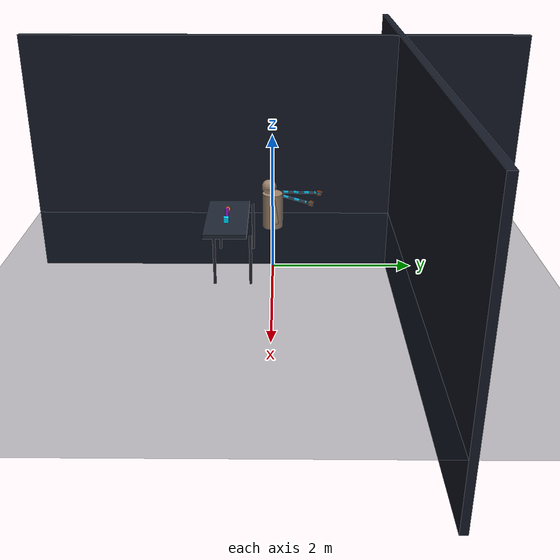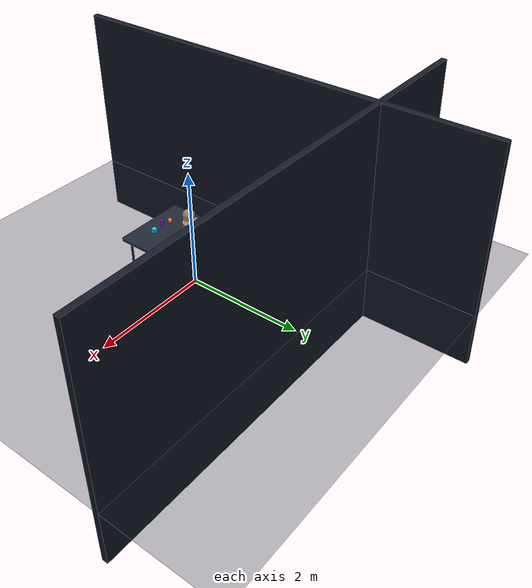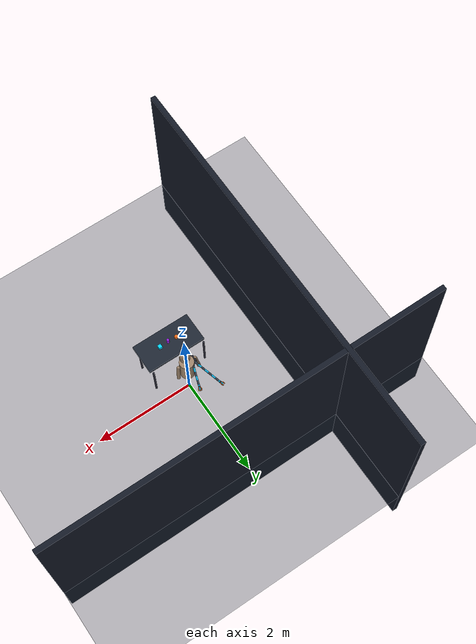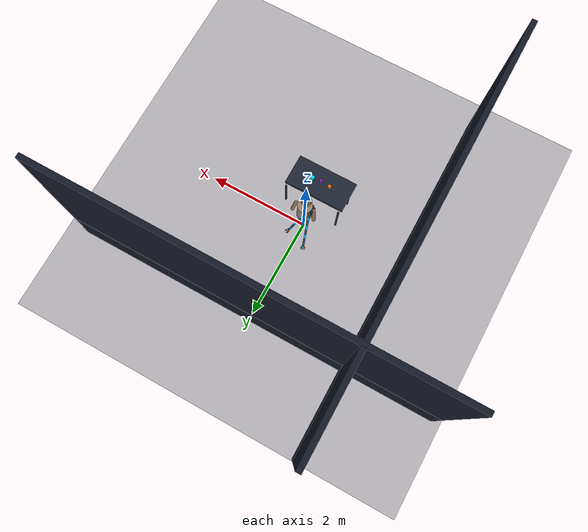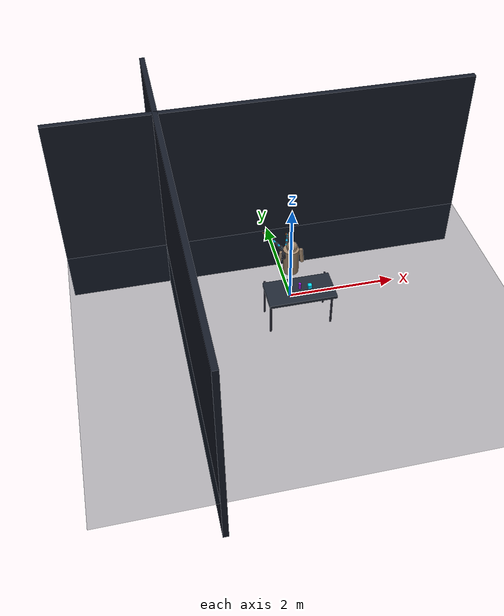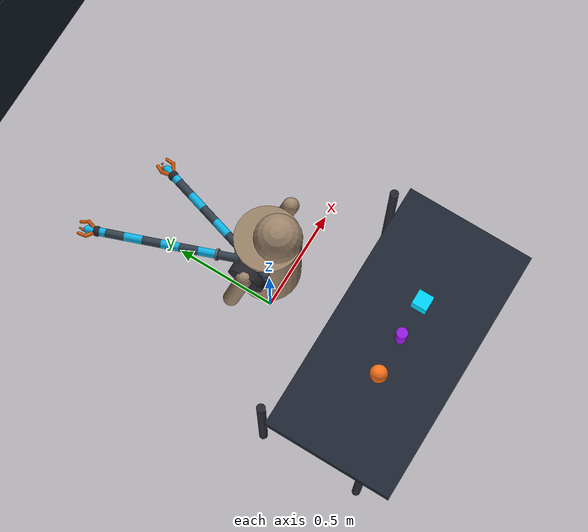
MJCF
<mujoco model="srl_iron_spider">
  <compiler angle="radian" meshdir="../meshes/" autolimits="true"/>

  <option integrator="RK4" timestep="0.002" gravity="0 0 -9.81" impratio="10">
    <flag energy="enable" contact="enable"/>
  </option>

  <default>
    <joint armature="0.01" damping="0.1" limited="true"/>
    <geom contype="1" conaffinity="1" condim="3" density="1000" solref="0.02 1" solimp="0.9 0.95 0.001"/>
    <position kp="100" kv="10" ctrlrange="-3.14 3.14" forcerange="-50 50"/>

    <!-- Redesigned Arm Materials -->
    <default class="odd_segment">
      <geom type="capsule" size="0.018 0.04" rgba="0.2 0.25 0.3 1" contype="2" conaffinity="1"/>
    </default>
    <default class="even_segment">
      <geom type="capsule" size="0.018 0.04" rgba="0.05 0.7 0.9 0.9" contype="2" conaffinity="1"/>
    </default>
    <default class="claw">
      <geom type="capsule" size="0.008 0.02" rgba="0.9 0.4 0.1 1"/>
    </default>
    <!-- Human skin tone/style -->
    <default class="human">
      <geom contype="0" conaffinity="0" rgba="0.62 0.52 0.42 1"/>
    </default>
  </default>

  <asset>
    <texture type="skybox" builtin="gradient" rgb1="0.3 0.5 0.7" rgb2="0 0 0" width="512" height="512"/>
    <texture name="grid" type="2d" builtin="checker" rgb1=".1 .2 .3" rgb2=".2 .3 .4" width="300" height="300" mark="edge" markrgb=".2 .3 .4"/>
    <material name="grid" texture="grid" texrepeat="1 1" texuniform="true" reflectance=".2"/>
  </asset>

  <worldbody>
    <!-- LIGHTING — cinematic multi-light setup -->
    <!-- Key light — front top, warm -->
    <light name="key_light" pos="1 -2 3"
           dir="-0.3 0.5 -0.8"
           diffuse="0.6 0.65 0.7" specular="0.3 0.3 0.4"
           castshadow="false"/>
    <!-- Fill light — left side, cool cyan tint -->
    <light name="fill_light" pos="-2 0 2"
           dir="0.6 0 -0.5"
           diffuse="0.05 0.2 0.35" specular="0.1 0.1 0.2"
           castshadow="false"/>
    <!-- Rim light — back, purple tint -->
    <light name="rim_light" pos="0 2 1.5"
           dir="0 -0.7 -0.4"
           diffuse="0.2 0.05 0.3" specular="0.1 0 0.15"
           castshadow="false"/>
    <!-- Under-glow — from below, very subtle cyan -->
    <light name="under_glow" pos="0 -0.5 0.1"
           dir="0 0.2 0.8"
           diffuse="0.02 0.08 0.12" specular="0 0 0"
           castshadow="false"/>

    <!-- ENVIRONMENT — a proper room not just a ground plane -->
    <!-- Dark floor with grid feel -->
    <geom name="floor" type="plane" size="4 4 0.1"
          rgba="0.05 0.08 0.12 1" condim="3"/>

    <!-- Three walls forming a corner behind the figure -->
    <geom name="wall_back" type="box" size="4 0.05 2"
          pos="0 2.0 1" rgba="0.08 0.1 0.15 1"/>
    <geom name="wall_left" type="box" size="0.05 4 2"
          pos="-2.0 0 1" rgba="0.08 0.1 0.15 1"/>

    <!-- Workbench in front of figure -->
    <geom name="workbench" type="box" size="0.6 0.3 0.03"
          pos="0 -0.65 0.75" rgba="0.12 0.15 0.2 1"/>
    <!-- Workbench legs -->
    <geom name="bench_leg1" type="cylinder" size="0.02 0.37"
          pos="-0.55 -0.8 0.38" rgba="0.15 0.15 0.2 1"/>
    <geom name="bench_leg2" type="cylinder" size="0.02 0.37"
          pos="0.55 -0.8 0.38" rgba="0.15 0.15 0.2 1"/>
    <geom name="bench_leg3" type="cylinder" size="0.02 0.37"
          pos="-0.55 -0.3 0.38" rgba="0.15 0.15 0.2 1"/>
    <geom name="bench_leg4" type="cylinder" size="0.02 0.37"
          pos="0.55 -0.3 0.38" rgba="0.15 0.15 0.2 1"/>

    <!-- INTERACTIVE OBJECTS — things the arms can pick up -->
    <!-- Object A: Cyan glowing cube — primary target -->
    <body name="obj_cube" pos="0.18 -0.65 0.82">
      <freejoint name="cube_joint"/>
      <geom type="box" size="0.035 0.035 0.035"
            rgba="0.0 0.85 1.0 1" mass="0.3"
            solimp="0.9 0.95 0.001" solref="0.02 1"/>
      <site name="cube_site" size="0.005"/>
    </body>

    <!-- Object B: Orange sphere — secondary target -->
    <body name="obj_sphere" pos="-0.18 -0.65 0.82">
      <freejoint name="sphere_joint"/>
      <geom type="sphere" size="0.04"
            rgba="1.0 0.45 0.1 1" mass="0.2"
            solimp="0.9 0.95 0.001" solref="0.02 1"/>
      <site name="sphere_site" size="0.005"/>
    </body>

    <!-- Object C: Purple cylinder — handoff object -->
    <body name="obj_cylinder" pos="0.0 -0.65 0.86">
      <freejoint name="cylinder_joint"/>
      <geom type="cylinder" size="0.025 0.055"
            rgba="0.6 0.1 0.9 1" mass="0.25"
            solimp="0.9 0.95 0.001" solref="0.02 1"/>
      <site name="cylinder_site" size="0.005"/>
    </body>

    <!-- FIXED BASE -->
    <body name="torso_base" pos="0 0 0.9" euler="0 0 0">
      <!-- Human Stand-in -->
      <geom name="human_torso" class="human" type="cylinder" size="0.14 0.25" pos="0 0 0" contype="1" conaffinity="2"/>
      <geom name="human_head" class="human" type="sphere" size="0.1" pos="0 -0.05 0.35" contype="1" conaffinity="2"/>
      <geom name="human_r_upper_arm" class="human" type="capsule" fromto="0.18 0 0.2   0.22 0.05 -0.1" size="0.035" contype="1" conaffinity="2"/>
      <geom name="human_l_upper_arm" class="human" type="capsule" fromto="-0.18 0 0.2  -0.22 0.05 -0.1" size="0.035" contype="1" conaffinity="2"/>

      <!-- Backpack: Slim Titanium Disc (centered on spine, mid-back) -->
      <geom name="backpack_disc" type="cylinder" size="0.08 0.03"
            pos="-0.15 0 0.15" euler="0 1.5708 0"
            rgba="0.15 0.15 0.18 1" contype="0" conaffinity="0"/>

      <!-- RIGHT ARM: mounts from disc, arcs over right shoulder -->
      <body name="r_shoulder_mount"
            pos="-0.13 -0.07 0.22" euler="-30 -60 -70">
        <joint name="r_joint1" type="hinge" axis="0 1 0" range="-3.14 3.14"/>
        <geom class="odd_segment" pos="0 0 0.04"/>
        <body name="r_seg2" pos="0 0 0.08">
          <joint name="r_joint2" type="hinge" axis="1 0 0" range="-3.14 3.14"/>
          <geom class="even_segment" pos="0 0 0.04"/>
          <geom type="cylinder" size="0.025 0.005" pos="0 0 0" rgba="0.4 0.4 0.4 1" contype="0" conaffinity="0"/>
          <body name="r_seg3" pos="0 0 0.08">
            <joint name="r_joint3" type="hinge" axis="0 1 0" range="-3.14 3.14"/>
            <geom class="odd_segment" pos="0 0 0.04"/>
            <body name="r_seg4" pos="0 0 0.08">
              <joint name="r_joint4" type="hinge" axis="1 0 0" range="-3.14 3.14"/>
              <geom class="even_segment" pos="0 0 0.04"/>
              <body name="r_seg5" pos="0 0 0.08">
                <joint name="r_joint5" type="hinge" axis="0 1 0" range="-3.14 3.14"/>
                <geom class="odd_segment" pos="0 0 0.04"/>
                <body name="r_seg6" pos="0 0 0.08">
                  <joint name="r_joint6" type="hinge" axis="1 0 0" range="-3.14 3.14"/>
                  <geom class="even_segment" pos="0 0 0.04"/>
                  <body name="r_seg7" pos="0 0 0.08">
                    <joint name="r_joint7" type="hinge" axis="0 1 0" range="-3.14 3.14"/>
                    <geom class="odd_segment" pos="0 0 0.04"/>
                    <body name="r_seg8" pos="0 0 0.08">
                      <joint name="r_joint8" type="hinge" axis="1 0 0" range="-3.14 3.14"/>
                      <geom class="even_segment" pos="0 0 0.04"/>
                      <body name="r_claw_base" pos="0 0 0.04">
                        <!-- Central hub -->
                        <geom type="sphere" size="0.022" rgba="0.15 0.15 0.18 1" contype="0" conaffinity="0"/>

                        <!-- Jaw 1 — forward -->
                        <geom type="capsule" fromto="0 0 0  0.0 0.035 0.038"
                              size="0.008" rgba="0.85 0.35 0.05 1" contype="0" conaffinity="0"/>
                        <geom type="capsule" fromto="0.0 0.035 0.038  0.0 0.028 0.072"
                              size="0.007" rgba="0.85 0.35 0.05 1" contype="0" conaffinity="0"/>

                        <!-- Jaw 2 — back-right (120 degrees) -->
                        <geom type="capsule" fromto="0 0 0  0.030 -0.018 0.038"
                              size="0.008" rgba="0.85 0.35 0.05 1" contype="0" conaffinity="0"/>
                        <geom type="capsule" fromto="0.030 -0.018 0.038  0.024 -0.014 0.072"
                              size="0.007" rgba="0.85 0.35 0.05 1" contype="0" conaffinity="0"/>

                        <!-- Jaw 3 — back-left (240 degrees) -->
                        <geom type="capsule" fromto="0 0 0  -0.030 -0.018 0.038"
                              size="0.008" rgba="0.85 0.35 0.05 1" contype="0" conaffinity="0"/>
                        <geom type="capsule" fromto="-0.030 -0.018 0.038  -0.024 -0.014 0.072"
                              size="0.007" rgba="0.85 0.35 0.05 1" contype="0" conaffinity="0"/>

                        <!-- Inner glow sphere at claw center -->
                        <geom type="sphere" size="0.011" pos="0 0 0.04"
                              rgba="0.0 0.85 1.0 0.9" contype="0" conaffinity="0"/>

                        <site name="r_gripper" pos="0 0 0.075" size="0.005"/>
                      </body>
                    </body>
                  </body>
                </body>
              </body>
            </body>
          </body>
        </body>
      </body>

      <!-- LEFT ARM: mounts from disc, arcs over left shoulder -->
      <body name="l_shoulder_mount"
            pos="-0.13 0.07 0.22" euler="-30 60 70">
        <joint name="l_joint1" type="hinge" axis="0 1 0" range="-3.14 3.14"/>
        <geom class="odd_segment" pos="0 0 0.04"/>
        <body name="l_seg2" pos="0 0 0.08">
          <joint name="l_joint2" type="hinge" axis="1 0 0" range="-3.14 3.14"/>
          <geom class="even_segment" pos="0 0 0.04"/>
          <geom type="cylinder" size="0.025 0.005" pos="0 0 0" rgba="0.4 0.4 0.4 1" contype="0" conaffinity="0"/>
          <body name="l_seg3" pos="0 0 0.08">
            <joint name="l_joint3" type="hinge" axis="0 1 0" range="-3.14 3.14"/>
            <geom class="odd_segment" pos="0 0 0.04"/>
            <body name="l_seg4" pos="0 0 0.08">
              <joint name="l_joint4" type="hinge" axis="1 0 0" range="-3.14 3.14"/>
              <geom class="even_segment" pos="0 0 0.04"/>
              <body name="l_seg5" pos="0 0 0.08">
                <joint name="l_joint5" type="hinge" axis="0 1 0" range="-3.14 3.14"/>
                <geom class="odd_segment" pos="0 0 0.04"/>
                <body name="l_seg6" pos="0 0 0.08">
                  <joint name="l_joint6" type="hinge" axis="1 0 0" range="-3.14 3.14"/>
                  <geom class="even_segment" pos="0 0 0.04"/>
                  <body name="l_seg7" pos="0 0 0.08">
                    <joint name="l_joint7" type="hinge" axis="0 1 0" range="-3.14 3.14"/>
                    <geom class="odd_segment" pos="0 0 0.04"/>
                    <body name="l_seg8" pos="0 0 0.08">
                      <joint name="l_joint8" type="hinge" axis="1 0 0" range="-3.14 3.14"/>
                      <geom class="even_segment" pos="0 0 0.04"/>
                      <body name="l_claw_base" pos="0 0 0.04">
                        <!-- Central hub -->
                        <geom type="sphere" size="0.022" rgba="0.15 0.15 0.18 1" contype="0" conaffinity="0"/>

                        <!-- Jaw 1 — forward -->
                        <geom type="capsule" fromto="0 0 0  0.0 0.035 0.038"
                              size="0.008" rgba="0.85 0.35 0.05 1" contype="0" conaffinity="0"/>
                        <geom type="capsule" fromto="0.0 0.035 0.038  0.0 0.028 0.072"
                              size="0.007" rgba="0.85 0.35 0.05 1" contype="0" conaffinity="0"/>

                        <!-- Jaw 2 — back-right (120 degrees) -->
                        <geom type="capsule" fromto="0 0 0  0.030 -0.018 0.038"
                              size="0.008" rgba="0.85 0.35 0.05 1" contype="0" conaffinity="0"/>
                        <geom type="capsule" fromto="0.030 -0.018 0.038  0.024 -0.014 0.072"
                              size="0.007" rgba="0.85 0.35 0.05 1" contype="0" conaffinity="0"/>

                        <!-- Jaw 3 — back-left (240 degrees) -->
                        <geom type="capsule" fromto="0 0 0  -0.030 -0.018 0.038"
                              size="0.008" rgba="0.85 0.35 0.05 1" contype="0" conaffinity="0"/>
                        <geom type="capsule" fromto="-0.030 -0.018 0.038  -0.024 -0.014 0.072"
                              size="0.007" rgba="0.85 0.35 0.05 1" contype="0" conaffinity="0"/>

                        <!-- Inner glow sphere at claw center -->
                        <geom type="sphere" size="0.011" pos="0 0 0.04"
                              rgba="0.0 0.85 1.0 0.9" contype="0" conaffinity="0"/>

                        <site name="l_gripper" pos="0 0 0.075" size="0.005"/>
                      </body>
                    </body>
                  </body>
                </body>
              </body>
            </body>
          </body>
        </body>
      </body>
    </body>
  </worldbody>

  <equality>
    <weld name="grasp_right" body1="r_claw_base" body2="obj_cube"
          relpose="0 0 -0.06 1 0 0 0"
          active="false" solref="0.01 1" solimp="0.99 0.999 0.0001"/>
    <weld name="grasp_left"  body1="l_claw_base" body2="obj_cube"
          relpose="0 0 -0.06 1 0 0 0"
          active="false" solref="0.01 1" solimp="0.99 0.999 0.0001"/>
    <weld name="grasp_sphere_r" body1="r_claw_base" body2="obj_sphere"
          relpose="0 0 -0.06 1 0 0 0"
          active="false" solref="0.01 1" solimp="0.99 0.999 0.0001"/>
    <weld name="grasp_sphere_l" body1="l_claw_base" body2="obj_sphere"
          relpose="0 0 -0.06 1 0 0 0"
          active="false" solref="0.01 1" solimp="0.99 0.999 0.0001"/>
    <weld name="grasp_cyl_r" body1="r_claw_base" body2="obj_cylinder"
          relpose="0 0 -0.06 1 0 0 0"
          active="false" solref="0.01 1" solimp="0.99 0.999 0.0001"/>
    <weld name="grasp_cyl_l" body1="l_claw_base" body2="obj_cylinder"
          relpose="0 0 -0.06 1 0 0 0"
          active="false" solref="0.01 1" solimp="0.99 0.999 0.0001"/>
  </equality>

  <keyframe>
    <!-- S-Curve Pose: back disc -> up -> forward -> down arc -->
    <!-- qpos includes 3 freejoints (3 * 7 = 21) plus 16 arm joints = 37 -->
    <key name="home"
         qpos="0.18 -0.65 0.82 1 0 0 0
               -0.18 -0.65 0.82 1 0 0 0
               0.0 -0.65 0.86 1 0 0 0
               -1.2  0.5 -0.8  0.4 -0.4  0.3 -0.2  0.1
               -1.2  0.5 -0.8  0.4 -0.4  0.3 -0.2  0.1"/>
  </keyframe>

  <actuator>
    <position name="r_act1" joint="r_joint1"/><position name="r_act2" joint="r_joint2"/>
    <position name="r_act3" joint="r_joint3"/><position name="r_act4" joint="r_joint4"/>
    <position name="r_act5" joint="r_joint5"/><position name="r_act6" joint="r_joint6"/>
    <position name="r_act7" joint="r_joint7"/><position name="r_act8" joint="r_joint8"/>

    <position name="l_act1" joint="l_joint1"/><position name="l_act2" joint="l_joint2"/>
    <position name="l_act3" joint="l_joint3"/><position name="l_act4" joint="l_joint4"/>
    <position name="l_act5" joint="l_joint5"/><position name="l_act6" joint="l_joint6"/>
    <position name="l_act7" joint="l_joint7"/><position name="l_act8" joint="l_joint8"/>
  </actuator>

  <sensor>
    <force name="r_force" site="r_gripper"/>
    <force name="l_force" site="l_gripper"/>
  </sensor>
</mujoco>
